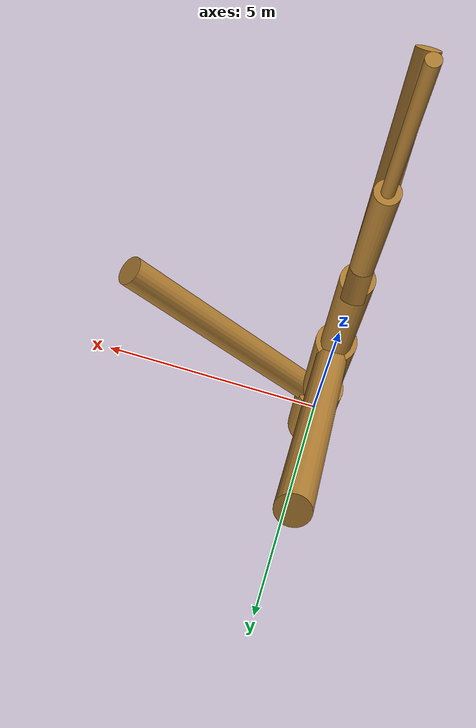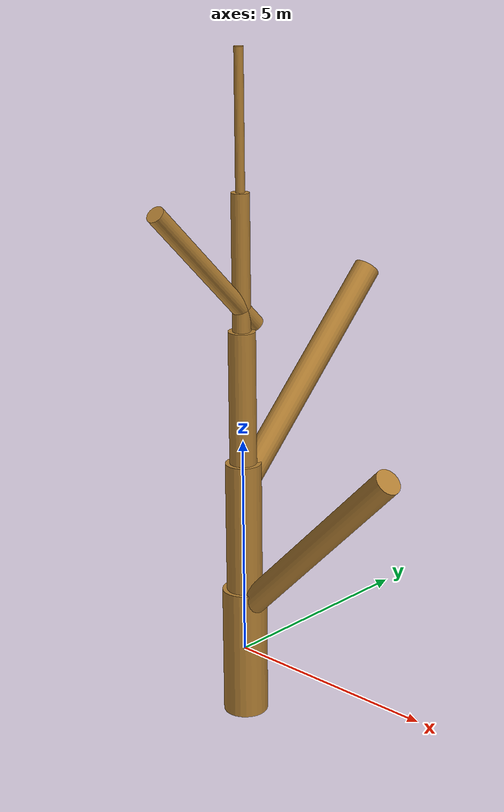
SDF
<?xml version='1.0'?>
<sdf version='1.6'>
  <model name='testTree'>

    <link name='link_0'>
      <pose frame=''>0 0 0 0 0 0</pose>
      <visual name='visual'>
        <pose frame=''>0 0 0 0 0 0</pose>
        <geometry>
          <cylinder>
            <radius>0.5</radius>
            <length>3</length>
          </cylinder>
        </geometry>
        <material>
          <lighting>1</lighting>
          <script>
            <uri>file://media/materials/scripts/gazebo.material</uri>
            <name>Gazebo/Grey</name>
          </script>
          <shader type='pixel'/>
          <ambient>0.7 0.5 0.2 1</ambient>
          <diffuse>0.7 0.7 0.7 1</diffuse>
          <specular>0.01 0.01 0.01 1</specular>
          <emissive>0.1 0.1 0.1 1</emissive>
        </material>
        <transparency>0</transparency>
        <cast_shadows>1</cast_shadows>
      </visual>
    </link>

    <link name='link_1'>
      <pose frame=''>0 0 3 0 0 0</pose>
      <visual name='visual'>
        <pose frame=''>0 0 0 0 0 0</pose>
        <geometry>
          <cylinder>
            <radius>0.4</radius>
            <length>3</length>
          </cylinder>
        </geometry>
        <material>
          <lighting>1</lighting>
          <script>
            <uri>file://media/materials/scripts/gazebo.material</uri>
            <name>Gazebo/Grey</name>
          </script>
          <shader type='pixel'/>
          <ambient>0.7 0.5 0.2 1</ambient>
          <diffuse>0.7 0.7 0.7 1</diffuse>
          <specular>0.01 0.01 0.01 1</specular>
          <emissive>0.1 0.1 0.1 1</emissive>
        </material>
        <transparency>0</transparency>
        <cast_shadows>1</cast_shadows>
      </visual>
    </link>

    <link name='link_2'>
      <pose frame=''>0 0 6 0 0 0</pose>
      <visual name='visual'>
        <pose frame=''>0 0 0 0 0 0</pose>
        <geometry>
          <cylinder>
            <radius>0.3</radius>
            <length>3</length>
          </cylinder>
        </geometry>
        <material>
          <lighting>1</lighting>
          <script>
            <uri>file://media/materials/scripts/gazebo.material</uri>
            <name>Gazebo/Grey</name>
          </script>
          <shader type='pixel'/>
          <ambient>0.7 0.5 0.2 1</ambient>
          <diffuse>0.7 0.7 0.7 1</diffuse>
          <specular>0.01 0.01 0.01 1</specular>
          <emissive>0.1 0.1 0.1 1</emissive>
        </material>
        <transparency>0</transparency>
        <cast_shadows>1</cast_shadows>
      </visual>
    </link>

    <link name='link_3'>
      <pose frame=''>0 0 9 0 0 0</pose>
      <visual name='visual'>
        <pose frame=''>0 0 0 0 0 0</pose>
        <geometry>
          <cylinder>
            <radius>0.2</radius>
            <length>3</length>
          </cylinder>
        </geometry>
        <material>
          <lighting>1</lighting>
          <script>
            <uri>file://media/materials/scripts/gazebo.material</uri>
            <name>Gazebo/Grey</name>
          </script>
          <shader type='pixel'/>
          <ambient>0.7 0.5 0.2 1</ambient>
          <diffuse>0.7 0.7 0.7 1</diffuse>
          <specular>0.01 0.01 0.01 1</specular>
          <emissive>0.1 0.1 0.1 1</emissive>
        </material>
        <transparency>0</transparency>
        <cast_shadows>1</cast_shadows>
      </visual>
    </link>

    <link name='link_4'>
      <pose frame=''>0 0 12 0 0 0</pose>
      <visual name='visual'>
        <pose frame=''>0 0 0 0 0 0</pose>
        <geometry>
          <cylinder>
            <radius>0.1</radius>
            <length>3</length>
          </cylinder>
        </geometry>
        <material>
          <lighting>1</lighting>
          <script>
            <uri>file://media/materials/scripts/gazebo.material</uri>
            <name>Gazebo/Grey</name>
          </script>
          <shader type='pixel'/>
          <ambient>0.7 0.5 0.2 1</ambient>
          <diffuse>0.7 0.7 0.7 1</diffuse>
          <specular>0.01 0.01 0.01 1</specular>
          <emissive>0.1 0.1 0.1 1</emissive>
        </material>
        <transparency>0</transparency>
        <cast_shadows>1</cast_shadows>
      </visual>
    </link>

    <link name='link_5'>
      <pose frame=''>0 -1 9 0.78 0 0</pose>
      <visual name='visual'>
        <pose frame=''>0 0 0 0 0 0</pose>
        <geometry>
          <cylinder>
            <radius>0.2</radius>
            <length>4</length>
          </cylinder>
        </geometry>
        <material>
          <lighting>1</lighting>
          <script>
            <uri>file://media/materials/scripts/gazebo.material</uri>
            <name>Gazebo/Grey</name>
          </script>
          <shader type='pixel'/>
          <ambient>0.7 0.5 0.2 1</ambient>
          <diffuse>0.7 0.7 0.7 1</diffuse>
          <specular>0.01 0.01 0.01 1</specular>
          <emissive>0.1 0.1 0.1 1</emissive>
        </material>
        <transparency>0</transparency>
        <cast_shadows>1</cast_shadows>
      </visual>
    </link>

    <link name='link_6'>
      <pose frame=''>0 2 6 -0.78 0 0</pose>
      <visual name='visual'>
        <pose frame=''>0 0 0 0 0 0</pose>
        <geometry>
          <cylinder>
            <radius>0.3</radius>
            <length>6</length>
          </cylinder>
        </geometry>
        <material>
          <lighting>1</lighting>
          <script>
            <uri>file://media/materials/scripts/gazebo.material</uri>
            <name>Gazebo/Grey</name>
          </script>
          <shader type='pixel'/>
          <ambient>0.7 0.5 0.2 1</ambient>
          <diffuse>0.7 0.7 0.7 1</diffuse>
          <specular>0.01 0.01 0.01 1</specular>
          <emissive>0.1 0.1 0.1 1</emissive>
        </material>
        <transparency>0</transparency>
        <cast_shadows>1</cast_shadows>
      </visual>
    </link>

    <link name='link_7'>
      <pose frame=''>2 0 3 0 0.78 0</pose>
      <visual name='visual'>
        <pose frame=''>0 0 0 0 0 0</pose>
        <geometry>
          <cylinder>
            <radius>0.3</radius>
            <length>6</length>
          </cylinder>
        </geometry>
        <material>
          <lighting>1</lighting>
          <script>
            <uri>file://media/materials/scripts/gazebo.material</uri>
            <name>Gazebo/Grey</name>
          </script>
          <shader type='pixel'/>
          <ambient>0.7 0.5 0.2 1</ambient>
          <diffuse>0.7 0.7 0.7 1</diffuse>
          <specular>0.01 0.01 0.01 1</specular>
          <emissive>0.1 0.1 0.1 1</emissive>
        </material>
        <transparency>0</transparency>
        <cast_shadows>1</cast_shadows>
      </visual>
    </link>

    <joint name='link_0_JOINT_0' type='fixed'>
      <parent>link_0</parent>
      <child>link_1</child>
      <pose frame=''>0 0 0 0 0 0</pose>
    </joint>

    <joint name='link_1_JOINT_0' type='fixed'>
      <parent>link_1</parent>
      <child>link_2</child>
      <pose frame=''>0 0 0 0 0 0</pose>
    </joint>

    <joint name='link_2_JOINT_0' type='fixed'>
      <parent>link_2</parent>
      <child>link_3</child>
      <pose frame=''>0 0 0 0 0 0</pose>
    </joint>

    <joint name='link_3_JOINT_0' type='fixed'>
      <parent>link_3</parent>
      <child>link_4</child>
      <pose frame=''>0 0 0 0 0 0</pose>
    </joint>
    <joint name='link_3_JOINT_1' type='fixed'>
      <parent>link_3</parent>
      <child>link_5</child>
      <pose frame=''>0 0 0 0 0 0</pose>
    </joint>
    <joint name='link_3_JOINT_2' type='fixed'>
      <parent>link_3</parent>
      <child>link_5</child>
      <pose frame=''>0 0 0 0 0 0</pose>
    </joint>

    <static>0</static>
    <allow_auto_disable>1</allow_auto_disable>
  </model>
</sdf>
